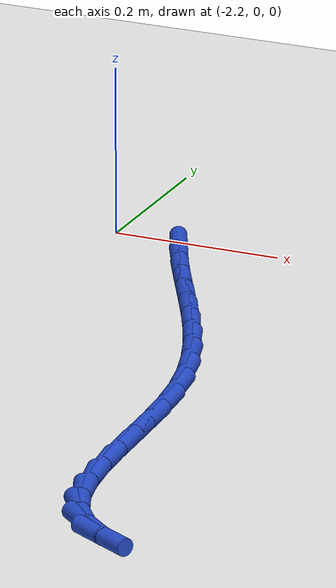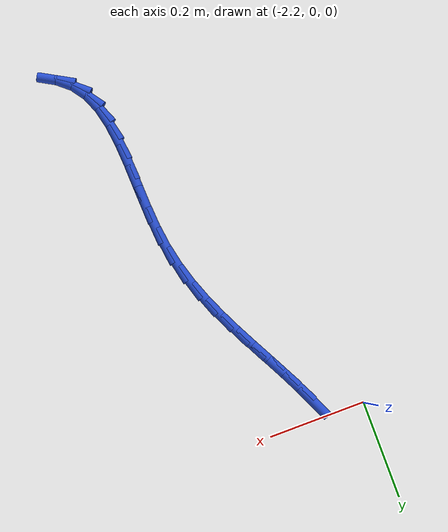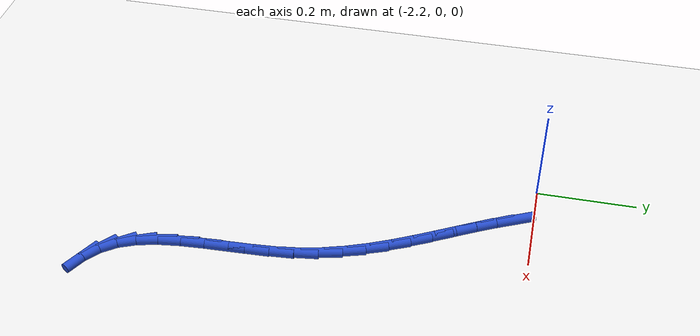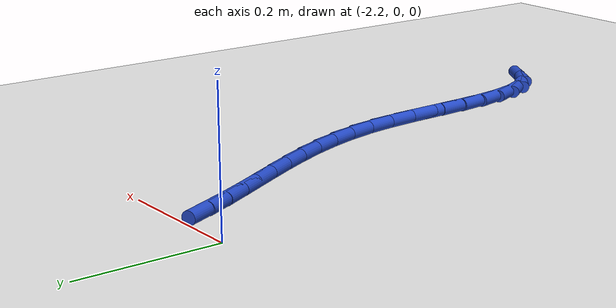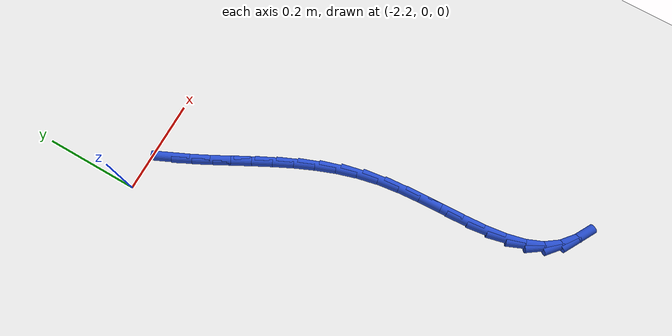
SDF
<sdf version="1.6">
 <world name="default">
  <model name="ground_plane">
   <static>1</static>
   <link name="link">
    <collision name="collision">
     <geometry><plane><normal>0 0 1</normal><size>100 100</size></plane></geometry>
     <surface><friction><ode><mu>100</mu><mu2>50</mu2></ode></friction></surface>
    </collision>
    <visual name="visual">
     <cast_shadows>0</cast_shadows>
     <geometry><plane><normal>0 0 1</normal><size>100 100</size></plane></geometry>
     <material>
      <script><uri>file://media/materials/scripts/gazebo.material</uri><name>Gazebo/WhiteGlow</name></script>
     </material>
    </visual>
   </link>
  </model>
  <model name="line">
   <link name="link_81">
    <pose>-2.106074433958102 -0.0364072947728164 0.01 0 1.57 -1.1400203359540626</pose>
    <collision name="collision">
     <geometry><cylinder><radius>0.01</radius><length>0.08</length></cylinder></geometry>
    </collision>
    <visual name="visual">
     <material>
      <script><name>Gazebo/Blue</name><uri>file://media/materials/scripts/gazebo.material</uri></script>
     </material>
     <geometry><cylinder><radius>0.01</radius><length>0.08</length></cylinder></geometry>
    </visual>
   </link>
   <link name="link_82">
    <pose>-2.0884355000584405 -0.07478946944519438 0.01 0 1.57 -1.10523139265718</pose>
    <collision name="collision">
     <geometry><cylinder><radius>0.01</radius><length>0.08</length></cylinder></geometry>
    </collision>
    <visual name="visual">
     <material>
      <script><name>Gazebo/Blue</name><uri>file://media/materials/scripts/gazebo.material</uri></script>
     </material>
     <geometry><cylinder><radius>0.01</radius><length>0.08</length></cylinder></geometry>
    </visual>
   </link>
   <link name="link_83">
    <pose>-2.0693167851446113 -0.11284431523161337 0.01 0 1.57 -1.0860455700476184</pose>
    <collision name="collision">
     <geometry><cylinder><radius>0.01</radius><length>0.08</length></cylinder></geometry>
    </collision>
    <visual name="visual">
     <material>
      <script><name>Gazebo/Blue</name><uri>file://media/materials/scripts/gazebo.material</uri></script>
     </material>
     <geometry><cylinder><radius>0.01</radius><length>0.08</length></cylinder></geometry>
    </visual>
   </link>
   <link name="link_84">
    <pose>-2.049312138511496 -0.1508279963105748 0.01 0 1.57 -1.0820616201482594</pose>
    <collision name="collision">
     <geometry><cylinder><radius>0.01</radius><length>0.08</length></cylinder></geometry>
    </collision>
    <visual name="visual">
     <material>
      <script><name>Gazebo/Blue</name><uri>file://media/materials/scripts/gazebo.material</uri></script>
     </material>
     <geometry><cylinder><radius>0.01</radius><length>0.08</length></cylinder></geometry>
    </visual>
   </link>
   <link name="link_85">
    <pose>-2.0290154094539736 -0.1889966768605793 0.01 0 1.57 -1.092953455381717</pose>
    <collision name="collision">
     <geometry><cylinder><radius>0.01</radius><length>0.08</length></cylinder></geometry>
    </collision>
    <visual name="visual">
     <material>
      <script><name>Gazebo/Blue</name><uri>file://media/materials/scripts/gazebo.material</uri></script>
     </material>
     <geometry><cylinder><radius>0.01</radius><length>0.08</length></cylinder></geometry>
    </visual>
   </link>
   <link name="link_86">
    <pose>-2.009020447266926 -0.2276065210601277 0.01 0 1.57 -1.1184923937611049</pose>
    <collision name="collision">
     <geometry><cylinder><radius>0.01</radius><length>0.08</length></cylinder></geometry>
    </collision>
    <visual name="visual">
     <material>
      <script><name>Gazebo/Blue</name><uri>file://media/materials/scripts/gazebo.material</uri></script>
     </material>
     <geometry><cylinder><radius>0.01</radius><length>0.08</length></cylinder></geometry>
    </visual>
   </link>
   <link name="link_87">
    <pose>-1.9899211012452331 -0.2669136930877213 0.01 0 1.57 -1.1584726141584933</pose>
    <collision name="collision">
     <geometry><cylinder><radius>0.01</radius><length>0.08</length></cylinder></geometry>
    </collision>
    <visual name="visual">
     <material>
      <script><name>Gazebo/Blue</name><uri>file://media/materials/scripts/gazebo.material</uri></script>
     </material>
     <geometry><cylinder><radius>0.01</radius><length>0.08</length></cylinder></geometry>
    </visual>
   </link>
   <link name="link_88">
    <pose>-1.9723112206837752 -0.30717435712185936 0.01 0 1.57 -1.2125501398032072</pose>
    <collision name="collision">
     <geometry><cylinder><radius>0.01</radius><length>0.08</length></cylinder></geometry>
    </collision>
    <visual name="visual">
     <material>
      <script><name>Gazebo/Blue</name><uri>file://media/materials/scripts/gazebo.material</uri></script>
     </material>
     <geometry><cylinder><radius>0.01</radius><length>0.08</length></cylinder></geometry>
    </visual>
   </link>
   <link name="link_89">
    <pose>-1.9567846548774344 -0.34864467734104354 0.01 0 1.57 -1.2800114658058306</pose>
    <collision name="collision">
     <geometry><cylinder><radius>0.01</radius><length>0.08</length></cylinder></geometry>
    </collision>
    <visual name="visual">
     <material>
      <script><name>Gazebo/Blue</name><uri>file://media/materials/scripts/gazebo.material</uri></script>
     </material>
     <geometry><cylinder><radius>0.01</radius><length>0.08</length></cylinder></geometry>
    </visual>
   </link>
   <link name="link_90">
    <pose>-1.9439352531210896 -0.3915808179237743 0.01 0 1.57 -1.3595148100893744</pose>
    <collision name="collision">
     <geometry><cylinder><radius>0.01</radius><length>0.08</length></cylinder></geometry>
    </collision>
    <visual name="visual">
     <material>
      <script><name>Gazebo/Blue</name><uri>file://media/materials/scripts/gazebo.material</uri></script>
     </material>
     <geometry><cylinder><radius>0.01</radius><length>0.08</length></cylinder></geometry>
    </visual>
   </link>
   <link name="link_91">
    <pose>-1.9343568647096223 -0.4362389430485525 0.01 0 1.57 -1.4428558304343264</pose>
    <collision name="collision">
     <geometry><cylinder><radius>0.01</radius><length>0.08</length></cylinder></geometry>
    </collision>
    <visual name="visual">
     <material>
      <script><name>Gazebo/Blue</name><uri>file://media/materials/scripts/gazebo.material</uri></script>
     </material>
     <geometry><cylinder><radius>0.01</radius><length>0.08</length></cylinder></geometry>
    </visual>
   </link>
   <link name="link_92">
    <pose>-1.9283790552215119 -0.48270708679352836 0.01 0 1.57 -1.501618243015796</pose>
    <collision name="collision">
     <geometry><cylinder><radius>0.01</radius><length>0.08</length></cylinder></geometry>
    </collision>
    <visual name="visual">
     <material>
      <script><name>Gazebo/Blue</name><uri>file://media/materials/scripts/gazebo.material</uri></script>
     </material>
     <geometry><cylinder><radius>0.01</radius><length>0.08</length></cylinder></geometry>
    </visual>
   </link>
   <link name="link_93">
    <pose>-1.9250828614265676 -0.5302790032231159 0.01 0 1.57 -1.5309750134360272</pose>
    <collision name="collision">
     <geometry><cylinder><radius>0.01</radius><length>0.08</length></cylinder></geometry>
    </collision>
    <visual name="visual">
     <material>
      <script><name>Gazebo/Blue</name><uri>file://media/materials/scripts/gazebo.material</uri></script>
     </material>
     <geometry><cylinder><radius>0.01</radius><length>0.08</length></cylinder></geometry>
    </visual>
   </link>
   <link name="link_94">
    <pose>-1.9231809810180374 -0.5780141191160821 0.01 0 1.57 -1.5325906902519473</pose>
    <collision name="collision">
     <geometry><cylinder><radius>0.01</radius><length>0.08</length></cylinder></geometry>
    </collision>
    <visual name="visual">
     <material>
      <script><name>Gazebo/Blue</name><uri>file://media/materials/scripts/gazebo.material</uri></script>
     </material>
     <geometry><cylinder><radius>0.01</radius><length>0.08</length></cylinder></geometry>
    </visual>
   </link>
   <link name="link_95">
    <pose>-1.9213860584658315 -0.6249718273919558 0.01 0 1.57 -1.5051229931585943</pose>
    <collision name="collision">
     <geometry><cylinder><radius>0.01</radius><length>0.08</length></cylinder></geometry>
    </collision>
    <visual name="visual">
     <material>
      <script><name>Gazebo/Blue</name><uri>file://media/materials/scripts/gazebo.material</uri></script>
     </material>
     <geometry><cylinder><radius>0.01</radius><length>0.08</length></cylinder></geometry>
    </visual>
   </link>
   <link name="link_96">
    <pose>-1.9184107382398605 -0.6702115209702668 0.01 0 1.57 -1.4436573495802814</pose>
    <collision name="collision">
     <geometry><cylinder><radius>0.01</radius><length>0.08</length></cylinder></geometry>
    </collision>
    <visual name="visual">
     <material>
      <script><name>Gazebo/Blue</name><uri>file://media/materials/scripts/gazebo.material</uri></script>
     </material>
     <geometry><cylinder><radius>0.01</radius><length>0.08</length></cylinder></geometry>
    </visual>
   </link>
   <link name="link_97">
    <pose>-1.9129676648100364 -0.7127925927705431 0.01 0 1.57 -1.3390741584907442</pose>
    <collision name="collision">
     <geometry><cylinder><radius>0.01</radius><length>0.08</length></cylinder></geometry>
    </collision>
    <visual name="visual">
     <material>
      <script><name>Gazebo/Blue</name><uri>file://media/materials/scripts/gazebo.material</uri></script>
     </material>
     <geometry><cylinder><radius>0.01</radius><length>0.08</length></cylinder></geometry>
    </visual>
   </link>
   <link name="link_98">
    <pose>-1.9037694826462683 -0.7517744357123143 0.01 0 1.57 -1.1787343188204447</pose>
    <collision name="collision">
     <geometry><cylinder><radius>0.01</radius><length>0.08</length></cylinder></geometry>
    </collision>
    <visual name="visual">
     <material>
      <script><name>Gazebo/Blue</name><uri>file://media/materials/scripts/gazebo.material</uri></script>
     </material>
     <geometry><cylinder><radius>0.01</radius><length>0.08</length></cylinder></geometry>
    </visual>
   </link>
   <link name="link_99">
    <pose>-1.8895288362184672 -0.7862164427151097 0.01 0 1.57 -0.9534844341967744</pose>
    <collision name="collision">
     <geometry><cylinder><radius>0.01</radius><length>0.08</length></cylinder></geometry>
    </collision>
    <visual name="visual">
     <material>
      <script><name>Gazebo/Blue</name><uri>file://media/materials/scripts/gazebo.material</uri></script>
     </material>
     <geometry><cylinder><radius>0.01</radius><length>0.08</length></cylinder></geometry>
    </visual>
   </link>
   <link name="link_100">
    <pose>-1.8689655114579298 -0.8151846400820307 0.01 0 1.57 -0.7042486083192949</pose>
    <collision name="collision">
     <geometry><cylinder><radius>0.01</radius><length>0.08</length></cylinder></geometry>
    </collision>
    <visual name="visual">
     <material>
      <script><name>Gazebo/Blue</name><uri>file://media/materials/scripts/gazebo.material</uri></script>
     </material>
     <geometry><cylinder><radius>0.01</radius><length>0.08</length></cylinder></geometry>
    </visual>
   </link>
   <link name="link_101">
    <pose>-1.8415690532979316 -0.8384600487709911 0.01 0 1.57 -0.5119324868294283</pose>
    <collision name="collision">
     <geometry><cylinder><radius>0.01</radius><length>0.08</length></cylinder></geometry>
    </collision>
    <visual name="visual">
     <material>
      <script><name>Gazebo/Blue</name><uri>file://media/materials/scripts/gazebo.material</uri></script>
     </material>
     <geometry><cylinder><radius>0.01</radius><length>0.08</length></cylinder></geometry>
    </visual>
   </link>
  </model>
 </world>
</sdf>
